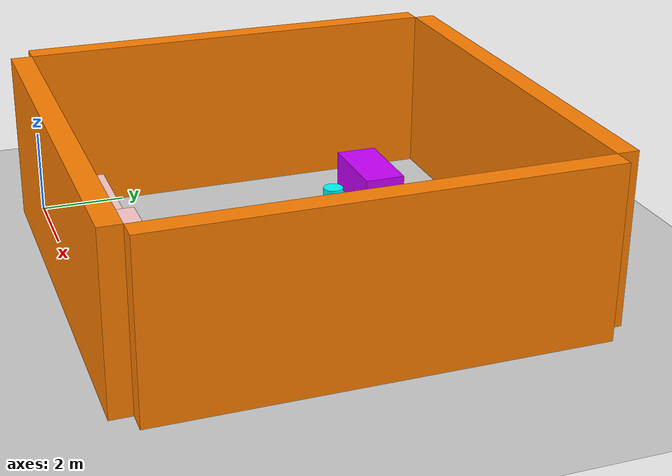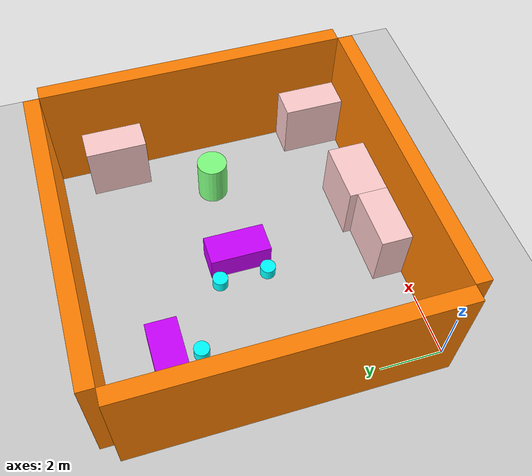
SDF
<?xml version="1.0" ?>
<sdf version='1.7'>
  <world name='room'>

    <!-- get the default ground plane and define a light source (the sun) -->
    <include>
      <uri>model://ground_plane</uri>
    </include>
    <include>
      <uri>model://sun</uri>
      <pose>8 1 10 0 -0 0</pose>
    </include>

    <!-- Build the room -->
    <model name='room_wall_right'>
      <include>
        <uri>model://room_wall</uri>
      </include>
      <pose>5 -0.25 2 0 -0 0</pose>
    </model>
    <model name='room_wall_top'>
      <include>
        <uri>model://room_wall</uri>
      </include>
      <pose>10.25 5 2 0 -0 1.5708</pose>
    </model>
    <model name='room_wall_left'>
      <include>
        <uri>model://room_wall</uri>
      </include>
      <pose>5 10.25 2 0 -0 0</pose>
    </model>
    <model name='room_wall_bottom'>
      <include>
        <uri>model://room_wall</uri>
      </include>
      <pose>-0.25 5 2 0 -0 1.5708</pose>
    </model>

    <model name='desk_1'>
      <include>
        <uri>model://desk</uri>
      </include>
      <pose>5 5 0.45 0 -0 0</pose>
    </model>
    <model name='desk_2'>
      <include>
        <uri>model://desk</uri>
      </include>
      <pose>2 8 0.45 0 -0 1.5708</pose>
    </model>

    <model name='seat_1'>
      <include>
        <uri>model://seat</uri>
      </include>
      <pose>4.2 4.2 0.2 0 -0 0</pose>
    </model>
    <model name='seat_2'>
      <include>
        <uri>model://seat</uri>
      </include>
      <pose>4.2 5.8 0.2 0 -0 0</pose>
    </model>
    <model name='seat_3'>
      <include>
        <uri>model://seat</uri>
      </include>
      <pose>2 7 0.2 0 -0 0</pose>
    </model>

    <model name='cabinet_shelf_1'>
      <include>
        <uri>model://cabinet_shelf</uri>
      </include>
      <pose>9.5 8 1 0 -0 0</pose>
    </model>
    <model name='cabinet_shelf_2'>
      <include>
        <uri>model://cabinet_shelf</uri>
      </include>
      <pose>9.5 1 1 0 -0 0</pose>
    </model>
    <model name='cabinet_shelf_3'>
      <include>
        <uri>model://cabinet_shelf</uri>
      </include>
      <pose>4 0.5 1 0 -0 1.5708</pose>
    </model>
    <model name='cabinet_shelf_deep'>
      <include>
        <uri>model://cabinet_shelf_deep</uri>
      </include>
      <pose>6 0.5 1 0 -0 1.5708</pose>
    </model>

    <model name='support_column'>
      <include>
        <uri>model://support_column</uri>
      </include>
      <pose>8 5 0.75 0 -0 0</pose>
    </model>

    <!-- setup camera to top down view of room -->
    <gui fullscreen='0'>
      <camera name='user_camera'>
        <pose>5 5 25 0 1.570796 0</pose>
        <view_controller>orbit</view_controller>
        <projection_type>perspective</projection_type>
      </camera>
    </gui>
  </world>
</sdf>

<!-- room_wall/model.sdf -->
<sdf version='1.7'>
  <model name='room_wall'>
    <!-- disable dynamics -->
    <static>true</static>
    <allow_auto_disable>1</allow_auto_disable>

    <!-- create physical object -->
    <link name='wall'>
      <!-- any physical properties or relations, no inertial as it should be immovable -->
      <gravity>1</gravity>
      <enable_wind>0</enable_wind>
      <self_collide>0</self_collide>
      <kinematic>0</kinematic>
      <pose>0 0 0 0 -0 0</pose>

      <!-- collision box definition -->
      <collision name='collision'>
        <laser_retro>0</laser_retro>
        <max_contacts>10</max_contacts>
        <pose>0 0 0 0 -0 0</pose>
        <geometry>
          <box>
            <size>10 0.5 4</size>
          </box>
        </geometry>
        <surface>
          <!-- make it basically impossible to move after collision -->
          <friction>
            <ode>
              <mu>100</mu>
              <mu2>100</mu2>
            </ode>
            <torsional>
              <coefficient>100</coefficient>
            </torsional>
          </friction>
          <!-- no bounce (default values) -->
          <bounce>
            <restitution_coefficient>0</restitution_coefficient>
            <threshold>1e+06</threshold>
          </bounce>
          <!-- default contact values used -->
        </surface>
      </collision>

      <!-- visual definition of the wall -->
      <visual name='visual'>
        <cast_shadows>1</cast_shadows>
        <transparency>0</transparency>
        <pose>0 0 0 0 -0 0</pose>
        <material>
          <ambient>1 0.5 0 1</ambient>
          <diffuse>1 0.5 0 1</diffuse>
          <specular>1 1 1 0.5</specular>
          <emissive>0 0 0 1</emissive>
        </material>
        <geometry>
          <box>
            <size>10 0.5 4</size>
          </box>
        </geometry>
      </visual>

    </link>
  </model>
</sdf>

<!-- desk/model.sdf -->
<sdf version='1.7'>
  <model name='desk'>
    <!-- disable dynamics -->
    <static>true</static>
    <allow_auto_disable>1</allow_auto_disable>

    <!-- create physical object -->
    <link name='desk'>
      <!-- any physical properties or relations, no inertial as it should be immovable -->
      <gravity>1</gravity>
      <enable_wind>0</enable_wind>
      <self_collide>0</self_collide>
      <kinematic>0</kinematic>
      <pose>0 0 0 0 -0 0</pose>

      <!-- collision box definition -->
      <collision name='collision'>
        <laser_retro>0</laser_retro>
        <max_contacts>10</max_contacts>
        <pose>0 0 0 0 -0 0</pose>
        <geometry>
          <box>
            <size>1 2 0.9</size>
          </box>
        </geometry>
        <surface>
          <!-- make it basically impossible to move after collision -->
          <friction>
            <ode>
              <mu>100</mu>
              <mu2>100</mu2>
            </ode>
            <torsional>
              <coefficient>100</coefficient>
            </torsional>
          </friction>
          <!-- no bounce and default collision values -->
        </surface>
      </collision>

      <!-- visual definition of the wall -->
      <visual name='visual'>
        <cast_shadows>1</cast_shadows>
        <transparency>0</transparency>
        <pose>0 0 0 0 -0 0</pose>
        <material>
          <ambient>0.8 0 1 1</ambient>
          <diffuse>0.8 0 1 1</diffuse>
          <specular>1 1 1 0.5</specular>
          <emissive>0 0 0 1</emissive>
        </material>
        <geometry>
          <box>
            <size>1 2 0.9</size>
          </box>
        </geometry>
      </visual>

    </link>
  </model>
</sdf>

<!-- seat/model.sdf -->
<sdf version='1.7'>
  <model name='seat'>
    <!-- disable dynamics -->
    <static>1</static>
    <allow_auto_disable>1</allow_auto_disable>

    <!-- create physical object -->
    <link name='seat'>
      <!-- any physical properties or relations, no inertial as it should be immovable -->
      <gravity>1</gravity>
      <enable_wind>0</enable_wind>
      <self_collide>0</self_collide>
      <kinematic>0</kinematic>
      <pose>0 0 0 0 -0 0</pose>

      <!-- collision cylinder definition -->
      <collision name='collision'>
        <laser_retro>0</laser_retro>
        <max_contacts>10</max_contacts>
        <pose>0 0 0 0 -0 0</pose>
        <geometry>
          <cylinder>
            <radius>0.25</radius>
            <length>0.4</length>
          </cylinder>
        </geometry>
        <surface>
          <!-- make it basically impossible to move after collision -->
          <friction>
            <ode>
              <mu>100</mu>
              <mu2>100</mu2>
            </ode>
            <torsional>
              <coefficient>100</coefficient>
            </torsional>
          </friction>
          <!-- no bounce and default collision values -->
        </surface>
      </collision>

      <!-- visual definition of the wall -->
      <visual name='visual'>
        <cast_shadows>1</cast_shadows>
        <transparency>0</transparency>
        <pose>0 0 0 0 -0 0</pose>
        <material>
          <ambient>0 1 1 1</ambient>
          <diffuse>0 1 1 1</diffuse>
          <specular>1 1 1 0.5</specular>
          <emissive>0 0 0 1</emissive>
        </material>
        <geometry>
          <cylinder>
            <radius>0.25</radius>
            <length>0.4</length>
          </cylinder>
        </geometry>
      </visual>

    </link>
  </model>
</sdf>

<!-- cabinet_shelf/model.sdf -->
<sdf version='1.7'>
  <model name='cabinet_shelf'>
    <!-- disable dynamics -->
    <static>true</static>
    <allow_auto_disable>1</allow_auto_disable>

    <!-- create physical object -->
    <link name='cabinet_shelf'>

      <!-- collision box definition -->
      <collision name='collision'>
        <laser_retro>0</laser_retro>
        <geometry>
          <box>
            <size>1 2 2</size>
          </box>
        </geometry>
        <surface>
          <!-- make it basically impossible to move after collision -->
          <friction>
            <ode>
              <mu>100</mu>
              <mu2>100</mu2>
            </ode>
            <torsional>
              <coefficient>100</coefficient>
            </torsional>
          </friction>
          <!-- no bounce and default collision values -->
        </surface>
      </collision>

      <!-- visual definition of the wall -->
      <visual name='visual'>
        <material>
          <ambient>1 0.8 0.8 1</ambient>
          <diffuse>1 0.8 0.8 1</diffuse>
          <specular>1 1 1 0.5</specular>
          <emissive>0 0 0 1</emissive>
        </material>
        <geometry>
          <box>
            <size>1 2 2</size>
          </box>
        </geometry>
      </visual>

    </link>
  </model>
</sdf>

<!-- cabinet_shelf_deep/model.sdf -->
<sdf version='1.7'>
  <model name='cabinet_shelf'>
    <!-- disable dynamics -->
    <static>true</static>
    <allow_auto_disable>1</allow_auto_disable>

    <!-- create physical object -->
    <link name='cabinet_shelf'>

      <!-- collision box definition -->
      <collision name='collision'>
        <laser_retro>0</laser_retro>
        <geometry>
          <box>
            <size>1.5 2 2</size>
          </box>
        </geometry>
        <surface>
          <!-- make it basically impossible to move after collision -->
          <friction>
            <ode>
              <mu>100</mu>
              <mu2>100</mu2>
            </ode>
            <torsional>
              <coefficient>100</coefficient>
            </torsional>
          </friction>
          <!-- no bounce and default collision values -->
        </surface>
      </collision>

      <!-- visual definition of the wall -->
      <visual name='visual'>
        <material>
          <ambient>1 0.8 0.8 1</ambient>
          <diffuse>1 0.8 0.8 1</diffuse>
          <specular>1 1 1 0.5</specular>
          <emissive>0 0 0 1</emissive>
        </material>
        <geometry>
          <box>
            <size>1.5 2 2</size>
          </box>
        </geometry>
      </visual>

    </link>
  </model>
</sdf>

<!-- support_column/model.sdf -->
<sdf version='1.7'>
  <model name='support_column'>
    <!-- disable dynamics -->
    <static>true</static>
    <allow_auto_disable>1</allow_auto_disable>

    <!-- create physical object -->
    <link name='support_column'>

      <!-- collision box definition -->
      <collision name='collision'>
        <laser_retro>0</laser_retro>
        <geometry>
          <cylinder>
            <radius>0.5</radius>
            <length>1.5</length>
          </cylinder>
        </geometry>
        <surface>
          <!-- make it basically impossible to move after collision -->
          <friction>
            <ode>
              <mu>100</mu>
              <mu2>100</mu2>
            </ode>
            <torsional>
              <coefficient>100</coefficient>
            </torsional>
          </friction>
          <!-- no bounce and default collision values -->
        </surface>
      </collision>

      <!-- visual definition of the wall -->
      <visual name='visual'>
        <material>
          <ambient>0.5 1 0.5 1</ambient>
          <diffuse>0.5 1 0.5 1</diffuse>
          <specular>1 1 1 0.5</specular>
          <emissive>0 0 0 1</emissive>
        </material>
        <geometry>
          <cylinder>
            <radius>0.5</radius>
            <length>1.5</length>
          </cylinder>
        </geometry>
      </visual>

    </link>
  </model>
</sdf>
